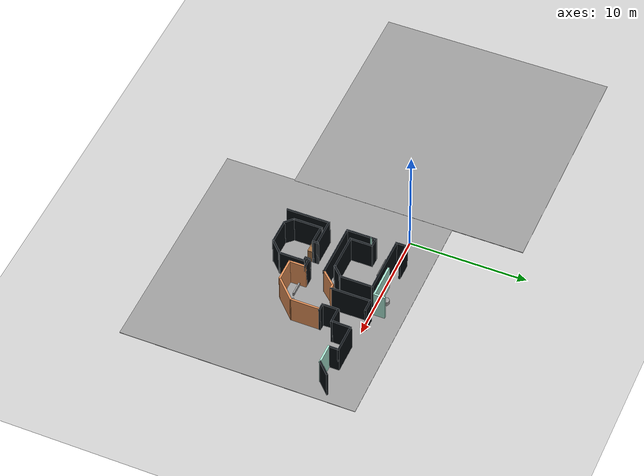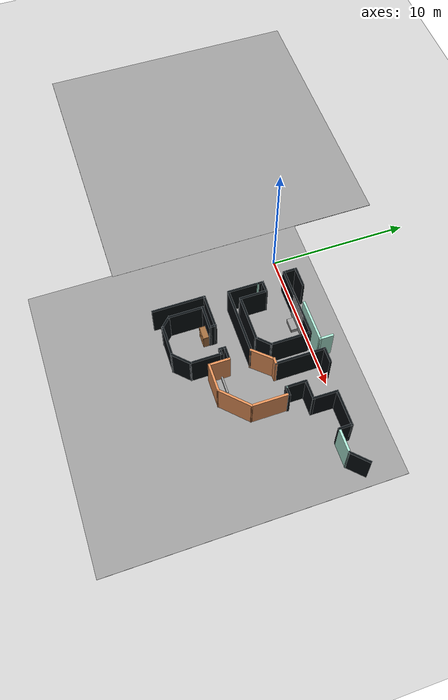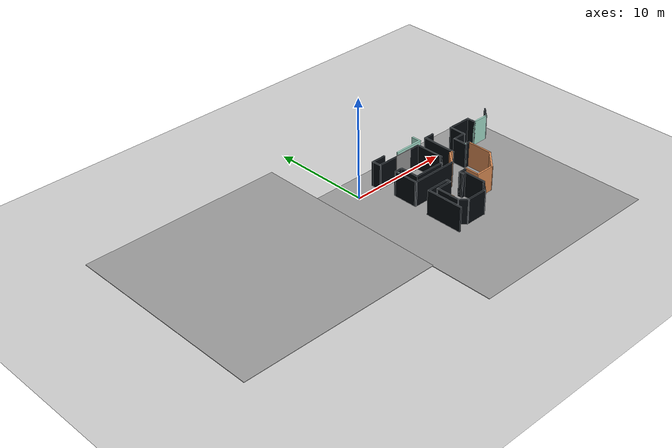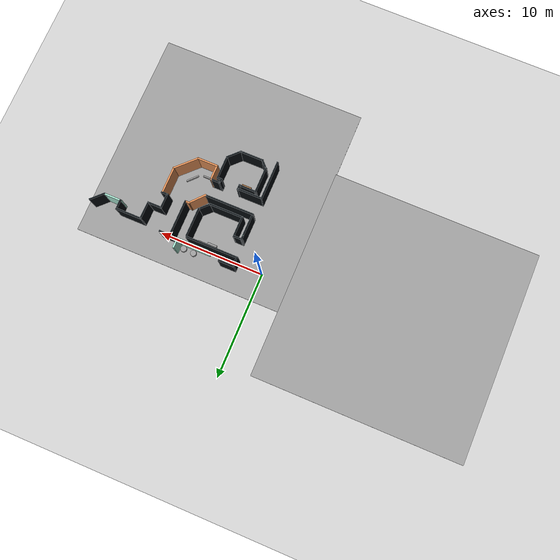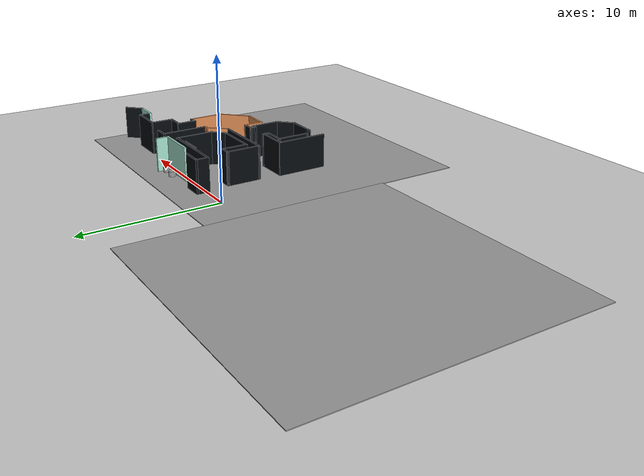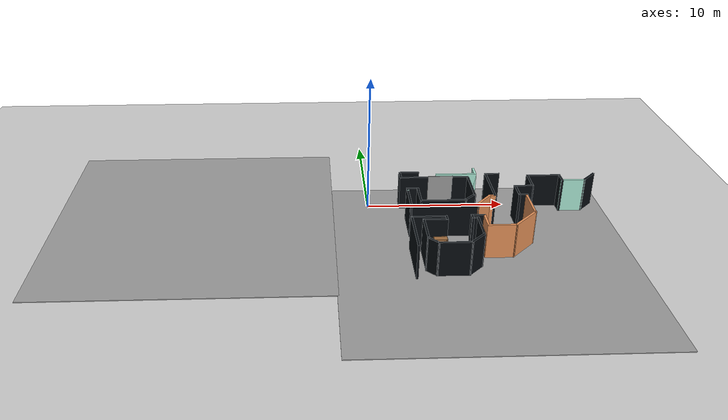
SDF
<sdf version="1.7">
 <world name="default">
  <model name="ground_plane">
   <static>1</static>
   <link name="link">
    <collision name="collision">
     <geometry><plane><normal>0 0 1</normal><size>100 100</size></plane></geometry>
     <surface><friction><ode><mu>100</mu><mu2>50</mu2></ode></friction></surface>
    </collision>
    <visual name="visual">
     <cast_shadows>0</cast_shadows>
     <geometry><plane><normal>0 0 1</normal><size>100 100</size></plane></geometry>
     <material>
      <script><uri>file://media/materials/scripts/gazebo.material</uri><name>Gazebo/Grey</name></script>
      <ambient>0.55 0.55 0.53 1</ambient>
      <diffuse>0.55 0.55 0.53 1</diffuse>
      <specular>0.08 0.08 0.08 1</specular>
      <emissive>0 0 0 1</emissive>
     </material>
    </visual>
   </link>
  </model>
  <model name="among_us_world">
   <pose>0.133216 -0.12311 0 0 -0 0</pose>
   <link name="Wall_130">
    <collision name="Wall_130_Collision">
     <geometry><box><size>3 0.15 2.5</size></box></geometry>
     <pose>0 0 1.25 0 -0 0</pose>
    </collision>
    <visual name="Wall_130_Visual">
     <pose>0 0 1.25 0 -0 0</pose>
     <geometry><box><size>3 0.15 2.5</size></box></geometry>
     <material>
      <script><uri>file://media/materials/scripts/gazebo.material</uri><name>Gazebo/Motorway</name></script>
      <ambient>0.66 0.90 0.82 1</ambient>
      <diffuse>0.66 0.90 0.82 1</diffuse>
      <specular>0.08 0.08 0.08 1</specular>
      <emissive>0 0 0 1</emissive>
     </material>
     <meta><layer>0</layer></meta>
    </visual>
    <pose>6.3307 0.332351 0 0 -0 0</pose>
   </link>
   <link name="Wall_131">
    <collision name="Wall_131_Collision">
     <geometry><box><size>1 0.15 2.5</size></box></geometry>
     <pose>0 0 1.25 0 -0 0</pose>
    </collision>
    <visual name="Wall_131_Visual">
     <pose>0 0 1.25 0 -0 0</pose>
     <geometry><box><size>1 0.15 2.5</size></box></geometry>
     <material>
      <script><uri>file://media/materials/scripts/gazebo.material</uri><name>Gazebo/Motorway</name></script>
      <ambient>0.66 0.90 0.82 1</ambient>
      <diffuse>0.66 0.90 0.82 1</diffuse>
      <specular>0.08 0.08 0.08 1</specular>
      <emissive>0 0 0 1</emissive>
     </material>
     <meta><layer>0</layer></meta>
    </visual>
    <pose>7.7557 0.757351 0 0 -0 1.5708</pose>
   </link>
   <link name="Wall_134">
    <collision name="Wall_134_Collision">
     <geometry><box><size>1.10593 0.15 2.5</size></box></geometry>
     <pose>0 0 1.25 0 -0 0</pose>
    </collision>
    <visual name="Wall_134_Visual">
     <pose>0 0 1.25 0 -0 0</pose>
     <geometry><box><size>1.10593 0.15 2.5</size></box></geometry>
     <material>
      <script><uri>file://media/materials/scripts/gazebo.material</uri><name>Gazebo/Motorway</name></script>
      <ambient>0.025 0.045 0.06 1</ambient>
      <diffuse>0.025 0.045 0.06 1</diffuse>
      <specular>0.08 0.08 0.08 1</specular>
      <emissive>0 0 0 1</emissive>
     </material>
     <meta><layer>0</layer></meta>
    </visual>
    <pose>8.98367 0.332351 0 0 -0 3.14159</pose>
   </link>
   <link name="Wall_135">
    <collision name="Wall_135_Collision">
     <geometry><box><size>3.5 0.15 2.5</size></box></geometry>
     <pose>0 0 1.25 0 -0 0</pose>
    </collision>
    <visual name="Wall_135_Visual">
     <pose>0 0 1.25 0 -0 0</pose>
     <geometry><box><size>3.5 0.15 2.5</size></box></geometry>
     <material>
      <script><uri>file://media/materials/scripts/gazebo.material</uri><name>Gazebo/Motorway</name></script>
      <ambient>0.025 0.045 0.06 1</ambient>
      <diffuse>0.025 0.045 0.06 1</diffuse>
      <specular>0.08 0.08 0.08 1</specular>
      <emissive>0 0 0 1</emissive>
     </material>
     <meta><layer>0</layer></meta>
    </visual>
    <pose>8.5057 -1.34265 0 0 -0 -1.5708</pose>
   </link>
   <link name="Wall_136">
    <collision name="Wall_136_Collision">
     <geometry><box><size>0.5 0.15 2.5</size></box></geometry>
     <pose>0 0 1.25 0 -0 0</pose>
    </collision>
    <visual name="Wall_136_Visual">
     <pose>0 0 1.25 0 -0 0</pose>
     <geometry><box><size>0.5 0.15 2.5</size></box></geometry>
     <material>
      <script><uri>file://media/materials/scripts/gazebo.material</uri><name>Gazebo/Motorway</name></script>
      <ambient>0.88 0.56 0.34 1</ambient>
      <diffuse>0.88 0.56 0.34 1</diffuse>
      <specular>0.08 0.08 0.08 1</specular>
      <emissive>0 0 0 1</emissive>
     </material>
     <meta><layer>0</layer></meta>
    </visual>
    <pose>8.3307 -3.01765 0 0 -0 3.14159</pose>
   </link>
   <link name="Wall_141">
    <collision name="Wall_141_Collision">
     <geometry><box><size>4.75 0.15 2.5</size></box></geometry>
     <pose>0 0 1.25 0 -0 0</pose>
    </collision>
    <visual name="Wall_141_Visual">
     <pose>0 0 1.25 0 -0 0</pose>
     <geometry><box><size>4.75 0.15 2.5</size></box></geometry>
     <material>
      <script><uri>file://media/materials/scripts/gazebo.material</uri><name>Gazebo/Motorway</name></script>
      <ambient>0.025 0.045 0.06 1</ambient>
      <diffuse>0.025 0.045 0.06 1</diffuse>
      <specular>0.08 0.08 0.08 1</specular>
      <emissive>0 0 0 1</emissive>
     </material>
     <meta><layer>0</layer></meta>
    </visual>
    <pose>4.78856 -4.21327 0 0 -0 0</pose>
   </link>
   <link name="Wall_143">
    <collision name="Wall_143_Collision">
     <geometry><box><size>1.75259 0.15 2.5</size></box></geometry>
     <pose>0 0 1.25 0 -0 0</pose>
    </collision>
    <visual name="Wall_143_Visual">
     <pose>0 0 1.25 0 -0 0</pose>
     <geometry><box><size>1.75259 0.15 2.5</size></box></geometry>
     <material>
      <script><uri>file://media/materials/scripts/gazebo.material</uri><name>Gazebo/Motorway</name></script>
      <ambient>0.88 0.56 0.34 1</ambient>
      <diffuse>0.88 0.56 0.34 1</diffuse>
      <specular>0.08 0.08 0.08 1</specular>
      <emissive>0 0 0 1</emissive>
     </material>
     <meta><layer>0</layer></meta>
    </visual>
    <pose>7.62213 -3.61546 0 0 -0 -2.29947</pose>
   </link>
   <link name="Wall_183">
    <collision name="Wall_183_Collision">
     <geometry><box><size>1.5 0.15 2.5</size></box></geometry>
     <pose>0 0 1.25 0 -0 0</pose>
    </collision>
    <visual name="Wall_183_Visual">
     <pose>0 0 1.25 0 -0 0</pose>
     <geometry><box><size>1.5 0.15 2.5</size></box></geometry>
     <material>
      <script><uri>file://media/materials/scripts/gazebo.material</uri><name>Gazebo/Motorway</name></script>
      <ambient>0.025 0.045 0.06 1</ambient>
      <diffuse>0.025 0.045 0.06 1</diffuse>
      <specular>0.08 0.08 0.08 1</specular>
      <emissive>0 0 0 1</emissive>
     </material>
     <meta><layer>0</layer></meta>
    </visual>
    <pose>2.89222 0.753062 0 0 -0 3.14159</pose>
   </link>
   <link name="Wall_184">
    <collision name="Wall_184_Collision">
     <geometry><box><size>1 0.15 2.5</size></box></geometry>
     <pose>0 0 1.25 0 -0 0</pose>
    </collision>
    <visual name="Wall_184_Visual">
     <pose>0 0 1.25 0 -0 0</pose>
     <geometry><box><size>1 0.15 2.5</size></box></geometry>
     <material>
      <script><uri>file://media/materials/scripts/gazebo.material</uri><name>Gazebo/Motorway</name></script>
      <ambient>0.025 0.045 0.06 1</ambient>
      <diffuse>0.025 0.045 0.06 1</diffuse>
      <specular>0.08 0.08 0.08 1</specular>
      <emissive>0 0 0 1</emissive>
     </material>
     <meta><layer>0</layer></meta>
    </visual>
    <pose>2.21722 0.328062 0 0 -0 -1.5708</pose>
   </link>
   <link name="Wall_185">
    <collision name="Wall_185_Collision">
     <geometry><box><size>5 0.15 2.5</size></box></geometry>
     <pose>0 0 1.25 0 -0 0</pose>
    </collision>
    <visual name="Wall_185_Visual">
     <pose>0 0 1.25 0 -0 0</pose>
     <geometry><box><size>5 0.15 2.5</size></box></geometry>
     <material>
      <script><uri>file://media/materials/scripts/gazebo.material</uri><name>Gazebo/Motorway</name></script>
      <ambient>0.025 0.045 0.06 1</ambient>
      <diffuse>0.025 0.045 0.06 1</diffuse>
      <specular>0.08 0.08 0.08 1</specular>
      <emissive>0 0 0 1</emissive>
     </material>
     <meta><layer>0</layer></meta>
    </visual>
    <pose>4.64222 -0.096938 0 0 -0 0</pose>
   </link>
   <link name="Wall_189">
    <collision name="Wall_189_Collision">
     <geometry><box><size>0.892418 0.15 2.5</size></box></geometry>
     <pose>0 0 1.25 0 -0 0</pose>
    </collision>
    <visual name="Wall_189_Visual">
     <pose>0 0 1.25 0 -0 0</pose>
     <geometry><box><size>0.892418 0.15 2.5</size></box></geometry>
     <material>
      <script><uri>file://media/materials/scripts/gazebo.material</uri><name>Gazebo/Motorway</name></script>
      <ambient>0.025 0.045 0.06 1</ambient>
      <diffuse>0.025 0.045 0.06 1</diffuse>
      <specular>0.08 0.08 0.08 1</specular>
      <emissive>0 0 0 1</emissive>
     </material>
     <meta><layer>0</layer></meta>
    </visual>
    <pose>2.86737 -1.75991 0 0 -0 -0.009059</pose>
   </link>
   <link name="Wall_190">
    <collision name="Wall_190_Collision">
     <geometry><box><size>2 0.15 2.5</size></box></geometry>
     <pose>0 0 1.25 0 -0 0</pose>
    </collision>
    <visual name="Wall_190_Visual">
     <pose>0 0 1.25 0 -0 0</pose>
     <geometry><box><size>2 0.15 2.5</size></box></geometry>
     <material>
      <script><uri>file://media/materials/scripts/gazebo.material</uri><name>Gazebo/Motorway</name></script>
      <ambient>0.025 0.045 0.06 1</ambient>
      <diffuse>0.025 0.045 0.06 1</diffuse>
      <specular>0.08 0.08 0.08 1</specular>
      <emissive>0 0 0 1</emissive>
     </material>
     <meta><layer>0</layer></meta>
    </visual>
    <pose>3.23856 -2.68827 0 0 -0 -1.5708</pose>
   </link>
   <link name="Wall_191">
    <collision name="Wall_191_Collision">
     <geometry><box><size>3.25 0.15 2.5</size></box></geometry>
     <pose>0 0 1.25 0 -0 0</pose>
    </collision>
    <visual name="Wall_191_Visual">
     <pose>0 0 1.25 0 -0 0</pose>
     <geometry><box><size>3.25 0.15 2.5</size></box></geometry>
     <material>
      <script><uri>file://media/materials/scripts/gazebo.material</uri><name>Gazebo/Motorway</name></script>
      <ambient>0.025 0.045 0.06 1</ambient>
      <diffuse>0.025 0.045 0.06 1</diffuse>
      <specular>0.08 0.08 0.08 1</specular>
      <emissive>0 0 0 1</emissive>
     </material>
     <meta><layer>0</layer></meta>
    </visual>
    <pose>4.78856 -3.61327 0 0 -0 0</pose>
   </link>
   <link name="Wall_192">
    <collision name="Wall_192_Collision">
     <geometry><box><size>1.25 0.15 2.5</size></box></geometry>
     <pose>0 0 1.25 0 -0 0</pose>
    </collision>
    <visual name="Wall_192_Visual">
     <pose>0 0 1.25 0 -0 0</pose>
     <geometry><box><size>1.25 0.15 2.5</size></box></geometry>
     <material>
      <script><uri>file://media/materials/scripts/gazebo.material</uri><name>Gazebo/Motorway</name></script>
      <ambient>0.025 0.045 0.06 1</ambient>
      <diffuse>0.025 0.045 0.06 1</diffuse>
      <specular>0.08 0.08 0.08 1</specular>
      <emissive>0 0 0 1</emissive>
     </material>
     <meta><layer>0</layer></meta>
    </visual>
    <pose>6.72747 -3.22436 0 0 -0 0.785398</pose>
   </link>
   <link name="Wall_193">
    <collision name="Wall_193_Collision">
     <geometry><box><size>2.75 0.15 2.5</size></box></geometry>
     <pose>0 0 1.25 0 -0 0</pose>
    </collision>
    <visual name="Wall_193_Visual">
     <pose>0 0 1.25 0 -0 0</pose>
     <geometry><box><size>2.75 0.15 2.5</size></box></geometry>
     <material>
      <script><uri>file://media/materials/scripts/gazebo.material</uri><name>Gazebo/Motorway</name></script>
      <ambient>0.025 0.045 0.06 1</ambient>
      <diffuse>0.025 0.045 0.06 1</diffuse>
      <specular>0.08 0.08 0.08 1</specular>
      <emissive>0 0 0 1</emissive>
     </material>
     <meta><layer>0</layer></meta>
    </visual>
    <pose>7.11638 -1.53545 0 0 -0 1.5708</pose>
   </link>
   <link name="Wall_200">
    <collision name="Wall_200_Collision">
     <geometry><box><size>3.75 0.15 2.5</size></box></geometry>
     <pose>0 0 1.25 0 -0 0</pose>
    </collision>
    <visual name="Wall_200_Visual">
     <pose>0 0 1.25 0 -0 0</pose>
     <geometry><box><size>3.75 0.15 2.5</size></box></geometry>
     <material>
      <script><uri>file://media/materials/scripts/gazebo.material</uri><name>Gazebo/Motorway</name></script>
      <ambient>0.025 0.045 0.06 1</ambient>
      <diffuse>0.025 0.045 0.06 1</diffuse>
      <specular>0.08 0.08 0.08 1</specular>
      <emissive>0 0 0 1</emissive>
     </material>
     <meta><layer>0</layer></meta>
    </visual>
    <pose>2.32919 -7.66138 0 0 -0 1.5708</pose>
   </link>
   <link name="Wall_211">
    <collision name="Wall_211_Collision">
     <geometry><box><size>0.15 0.15 2.5</size></box></geometry>
     <pose>0 0 1.25 0 -0 0</pose>
    </collision>
    <visual name="Wall_211_Visual">
     <pose>0 0 1.25 0 -0 0</pose>
     <geometry><box><size>0.15 0.15 2.5</size></box></geometry>
     <material>
      <script><uri>file://media/materials/scripts/gazebo.material</uri><name>Gazebo/Motorway</name></script>
      <ambient>0.66 0.90 0.82 1</ambient>
      <diffuse>0.66 0.90 0.82 1</diffuse>
      <specular>0.08 0.08 0.08 1</specular>
      <emissive>0 0 0 1</emissive>
     </material>
     <meta><layer>0</layer></meta>
    </visual>
    <pose>2.50201 -2.11327 0 0 -0 0</pose>
   </link>
   <link name="Wall_217">
    <collision name="Wall_217_Collision">
     <geometry><box><size>2.60674 0.15 2.5</size></box></geometry>
     <pose>0 0 1.25 0 -0 0</pose>
    </collision>
    <visual name="Wall_217_Visual">
     <pose>0 0 1.25 0 -0 0</pose>
     <geometry><box><size>2.60674 0.15 2.5</size></box></geometry>
     <material>
      <script><uri>file://media/materials/scripts/gazebo.material</uri><name>Gazebo/Motorway</name></script>
      <ambient>0.025 0.045 0.06 1</ambient>
      <diffuse>0.025 0.045 0.06 1</diffuse>
      <specular>0.08 0.08 0.08 1</specular>
      <emissive>0 0 0 1</emissive>
     </material>
     <meta><layer>0</layer></meta>
    </visual>
    <pose>2.49237 -2.9849 0 0 -0 -1.5739</pose>
   </link>
   <link name="Wall_22">
    <collision name="Wall_22_Collision">
     <geometry><box><size>1.5 0.15 2.5</size></box></geometry>
     <pose>0 0 1.25 0 -0 0</pose>
    </collision>
    <visual name="Wall_22_Visual">
     <pose>0 0 1.25 0 -0 0</pose>
     <geometry><box><size>1.5 0.15 2.5</size></box></geometry>
     <material>
      <script><uri>file://media/materials/scripts/gazebo.material</uri><name>Gazebo/Motorway</name></script>
      <ambient>0.025 0.045 0.06 1</ambient>
      <diffuse>0.025 0.045 0.06 1</diffuse>
      <specular>0.08 0.08 0.08 1</specular>
      <emissive>0 0 0 1</emissive>
     </material>
     <meta><layer>0</layer></meta>
    </visual>
    <pose>15.9665 -0.40005 0 0 -0 -2.35619</pose>
   </link>
   <link name="Wall_23">
    <collision name="Wall_23_Collision">
     <geometry><box><size>1.75 0.15 2.5</size></box></geometry>
     <pose>0 0 1.25 0 -0 0</pose>
    </collision>
    <visual name="Wall_23_Visual">
     <pose>0 0 1.25 0 -0 0</pose>
     <geometry><box><size>1.75 0.15 2.5</size></box></geometry>
     <material>
      <script><uri>file://media/materials/scripts/gazebo.material</uri><name>Gazebo/Motorway</name></script>
      <ambient>0.66 0.90 0.82 1</ambient>
      <diffuse>0.66 0.90 0.82 1</diffuse>
      <specular>0.08 0.08 0.08 1</specular>
      <emissive>0 0 0 1</emissive>
     </material>
     <meta><layer>0</layer></meta>
    </visual>
    <pose>14.6892 -0.877347 0 0 -0 3.14159</pose>
   </link>
   <link name="Wall_24">
    <collision name="Wall_24_Collision">
     <geometry><box><size>0.963748 0.15 2.5</size></box></geometry>
     <pose>0 0 1.25 0 -0 0</pose>
    </collision>
    <visual name="Wall_24_Visual">
     <pose>0 0 1.25 0 -0 0</pose>
     <geometry><box><size>0.963748 0.15 2.5</size></box></geometry>
     <material>
      <script><uri>file://media/materials/scripts/gazebo.material</uri><name>Gazebo/Motorway</name></script>
      <ambient>0.025 0.045 0.06 1</ambient>
      <diffuse>0.025 0.045 0.06 1</diffuse>
      <specular>0.08 0.08 0.08 1</specular>
      <emissive>0 0 0 1</emissive>
     </material>
     <meta><layer>0</layer></meta>
    </visual>
    <pose>13.8892 -0.470473 0 0 -0 1.5708</pose>
   </link>
   <link name="Wall_25">
    <collision name="Wall_25_Collision">
     <geometry><box><size>2.5 0.15 2.5</size></box></geometry>
     <pose>0 0 1.25 0 -0 0</pose>
    </collision>
    <visual name="Wall_25_Visual">
     <pose>0 0 1.25 0 -0 0</pose>
     <geometry><box><size>2.5 0.15 2.5</size></box></geometry>
     <material>
      <script><uri>file://media/materials/scripts/gazebo.material</uri><name>Gazebo/Motorway</name></script>
      <ambient>0.025 0.045 0.06 1</ambient>
      <diffuse>0.025 0.045 0.06 1</diffuse>
      <specular>0.08 0.08 0.08 1</specular>
      <emissive>0 0 0 1</emissive>
     </material>
     <meta><layer>0</layer></meta>
    </visual>
    <pose>12.7142 -0.045708 0 0 -0 3.14159</pose>
   </link>
   <link name="Wall_26">
    <collision name="Wall_26_Collision">
     <geometry><box><size>1.73416 0.15 2.5</size></box></geometry>
     <pose>0 0 1.25 0 -0 0</pose>
    </collision>
    <visual name="Wall_26_Visual">
     <pose>0 0 1.25 0 -0 0</pose>
     <geometry><box><size>1.73416 0.15 2.5</size></box></geometry>
     <material>
      <script><uri>file://media/materials/scripts/gazebo.material</uri><name>Gazebo/Motorway</name></script>
      <ambient>0.025 0.045 0.06 1</ambient>
      <diffuse>0.025 0.045 0.06 1</diffuse>
      <specular>0.08 0.08 0.08 1</specular>
      <emissive>0 0 0 1</emissive>
     </material>
     <meta><layer>0</layer></meta>
    </visual>
    <pose>11.5256 -0.855562 0 0 -0 -1.58788</pose>
   </link>
   <link name="Wall_27">
    <collision name="Wall_27_Collision">
     <geometry><box><size>1.40477 0.15 2.5</size></box></geometry>
     <pose>0 0 1.25 0 -0 0</pose>
    </collision>
    <visual name="Wall_27_Visual">
     <pose>0 0 1.25 0 -0 0</pose>
     <geometry><box><size>1.40477 0.15 2.5</size></box></geometry>
     <material>
      <script><uri>file://media/materials/scripts/gazebo.material</uri><name>Gazebo/Motorway</name></script>
      <ambient>0.025 0.045 0.06 1</ambient>
      <diffuse>0.025 0.045 0.06 1</diffuse>
      <specular>0.08 0.08 0.08 1</specular>
      <emissive>0 0 0 1</emissive>
     </material>
     <meta><layer>0</layer></meta>
    </visual>
    <pose>10.8914 -1.64752 0 0 -0 3.14159</pose>
   </link>
   <link name="Wall_66">
    <collision name="Wall_66_Collision">
     <geometry><box><size>2.44341 0.15 2.5</size></box></geometry>
     <pose>0 0 1.25 0 -0 0</pose>
    </collision>
    <visual name="Wall_66_Visual">
     <pose>0 0 1.25 0 -0 0</pose>
     <geometry><box><size>2.44341 0.15 2.5</size></box></geometry>
     <material>
      <script><uri>file://media/materials/scripts/gazebo.material</uri><name>Gazebo/Motorway</name></script>
      <ambient>0.025 0.045 0.06 1</ambient>
      <diffuse>0.025 0.045 0.06 1</diffuse>
      <specular>0.08 0.08 0.08 1</specular>
      <emissive>0 0 0 1</emissive>
     </material>
     <meta><layer>0</layer></meta>
    </visual>
    <pose>3.49624 -5.86016 0 0 -0 0.001069</pose>
   </link>
   <link name="Wall_68">
    <collision name="Wall_68_Collision">
     <geometry><box><size>0.526231 0.15 2.5</size></box></geometry>
     <pose>0 0 1.25 0 -0 0</pose>
    </collision>
    <visual name="Wall_68_Visual">
     <pose>0 0 1.25 0 -0 0</pose>
     <geometry><box><size>0.526231 0.15 2.5</size></box></geometry>
     <material>
      <script><uri>file://media/materials/scripts/gazebo.material</uri><name>Gazebo/Motorway</name></script>
      <ambient>0.025 0.045 0.06 1</ambient>
      <diffuse>0.025 0.045 0.06 1</diffuse>
      <specular>0.08 0.08 0.08 1</specular>
      <emissive>0 0 0 1</emissive>
     </material>
     <meta><layer>0</layer></meta>
    </visual>
    <pose>4.64294 -6.02916 0 0 -0 -1.5708</pose>
   </link>
   <link name="Wall_69">
    <collision name="Wall_69_Collision">
     <geometry><box><size>1.71385 0.15 2.5</size></box></geometry>
     <pose>0 0 1.25 0 -0 0</pose>
    </collision>
    <visual name="Wall_69_Visual">
     <pose>0 0 1.25 0 -0 0</pose>
     <geometry><box><size>1.71385 0.15 2.5</size></box></geometry>
     <material>
      <script><uri>file://media/materials/scripts/gazebo.material</uri><name>Gazebo/Motorway</name></script>
      <ambient>0.025 0.045 0.06 1</ambient>
      <diffuse>0.025 0.045 0.06 1</diffuse>
      <specular>0.08 0.08 0.08 1</specular>
      <emissive>0 0 0 1</emissive>
     </material>
     <meta><layer>0</layer></meta>
    </visual>
    <pose>3.86107 -6.22622 0 0 -0 3.13015</pose>
   </link>
   <link name="Wall_70">
    <collision name="Wall_70_Collision">
     <geometry><box><size>2.5 0.15 2.5</size></box></geometry>
     <pose>0 0 1.25 0 -0 0</pose>
    </collision>
    <visual name="Wall_70_Visual">
     <pose>0 0 1.25 0 -0 0</pose>
     <geometry><box><size>2.5 0.15 2.5</size></box></geometry>
     <material>
      <script><uri>file://media/materials/scripts/gazebo.material</uri><name>Gazebo/Motorway</name></script>
      <ambient>0.025 0.045 0.06 1</ambient>
      <diffuse>0.025 0.045 0.06 1</diffuse>
      <specular>0.08 0.08 0.08 1</specular>
      <emissive>0 0 0 1</emissive>
     </material>
     <meta><layer>0</layer></meta>
    </visual>
    <pose>3.07919 -7.39227 0 0 -0 -1.5708</pose>
   </link>
   <link name="Wall_71">
    <collision name="Wall_71_Collision">
     <geometry><box><size>1 0.15 2.5</size></box></geometry>
     <pose>0 0 1.25 0 -0 0</pose>
    </collision>
    <visual name="Wall_71_Visual">
     <pose>0 0 1.25 0 -0 0</pose>
     <geometry><box><size>1 0.15 2.5</size></box></geometry>
     <material>
      <script><uri>file://media/materials/scripts/gazebo.material</uri><name>Gazebo/Motorway</name></script>
      <ambient>0.025 0.045 0.06 1</ambient>
      <diffuse>0.025 0.045 0.06 1</diffuse>
      <specular>0.08 0.08 0.08 1</specular>
      <emissive>0 0 0 1</emissive>
     </material>
     <meta><layer>0</layer></meta>
    </visual>
    <pose>3.37971 -8.86779 0 0 -0 -0.785398</pose>
   </link>
   <link name="Wall_72">
    <collision name="Wall_72_Collision">
     <geometry><box><size>2.25 0.15 2.5</size></box></geometry>
     <pose>0 0 1.25 0 -0 0</pose>
    </collision>
    <visual name="Wall_72_Visual">
     <pose>0 0 1.25 0 -0 0</pose>
     <geometry><box><size>2.25 0.15 2.5</size></box></geometry>
     <material>
      <script><uri>file://media/materials/scripts/gazebo.material</uri><name>Gazebo/Motorway</name></script>
      <ambient>0.025 0.045 0.06 1</ambient>
      <diffuse>0.025 0.045 0.06 1</diffuse>
      <specular>0.08 0.08 0.08 1</specular>
      <emissive>0 0 0 1</emissive>
     </material>
     <meta><layer>0</layer></meta>
    </visual>
    <pose>4.73024 -9.16831 0 0 -0 0</pose>
   </link>
   <link name="Wall_73">
    <collision name="Wall_73_Collision">
     <geometry><box><size>1.5 0.15 2.5</size></box></geometry>
     <pose>0 0 1.25 0 -0 0</pose>
    </collision>
    <visual name="Wall_73_Visual">
     <pose>0 0 1.25 0 -0 0</pose>
     <geometry><box><size>1.5 0.15 2.5</size></box></geometry>
     <material>
      <script><uri>file://media/materials/scripts/gazebo.material</uri><name>Gazebo/Motorway</name></script>
      <ambient>0.025 0.045 0.06 1</ambient>
      <diffuse>0.025 0.045 0.06 1</diffuse>
      <specular>0.08 0.08 0.08 1</specular>
      <emissive>0 0 0 1</emissive>
     </material>
     <meta><layer>0</layer></meta>
    </visual>
    <pose>6.25753 -8.69102 0 0 -0 0.785398</pose>
   </link>
   <link name="Wall_76">
    <collision name="Wall_76_Collision">
     <geometry><box><size>2.25 0.15 2.5</size></box></geometry>
     <pose>0 0 1.25 0 -0 0</pose>
    </collision>
    <visual name="Wall_76_Visual">
     <pose>0 0 1.25 0 -0 0</pose>
     <geometry><box><size>2.25 0.15 2.5</size></box></geometry>
     <material>
      <script><uri>file://media/materials/scripts/gazebo.material</uri><name>Gazebo/Motorway</name></script>
      <ambient>0.025 0.045 0.06 1</ambient>
      <diffuse>0.025 0.045 0.06 1</diffuse>
      <specular>0.08 0.08 0.08 1</specular>
      <emissive>0 0 0 1</emissive>
     </material>
     <meta><layer>0</layer></meta>
    </visual>
    <pose>6.73483 -7.16372 0 0 -0 1.5708</pose>
   </link>
   <link name="Wall_77">
    <collision name="Wall_77_Collision">
     <geometry><box><size>0.5 0.15 2.5</size></box></geometry>
     <pose>0 0 1.25 0 -0 0</pose>
    </collision>
    <visual name="Wall_77_Visual">
     <pose>0 0 1.25 0 -0 0</pose>
     <geometry><box><size>0.5 0.15 2.5</size></box></geometry>
     <material>
      <script><uri>file://media/materials/scripts/gazebo.material</uri><name>Gazebo/Motorway</name></script>
      <ambient>0.025 0.045 0.06 1</ambient>
      <diffuse>0.025 0.045 0.06 1</diffuse>
      <specular>0.08 0.08 0.08 1</specular>
      <emissive>0 0 0 1</emissive>
     </material>
     <meta><layer>0</layer></meta>
    </visual>
    <pose>6.55983 -6.11372 0 0 -0 3.14159</pose>
   </link>
   <link name="Wall_78">
    <collision name="Wall_78_Collision">
     <geometry><box><size>0.5 0.15 2.5</size></box></geometry>
     <pose>0 0 1.25 0 -0 0</pose>
    </collision>
    <visual name="Wall_78_Visual">
     <pose>0 0 1.25 0 -0 0</pose>
     <geometry><box><size>0.5 0.15 2.5</size></box></geometry>
     <material>
      <script><uri>file://media/materials/scripts/gazebo.material</uri><name>Gazebo/Motorway</name></script>
      <ambient>0.025 0.045 0.06 1</ambient>
      <diffuse>0.025 0.045 0.06 1</diffuse>
      <specular>0.08 0.08 0.08 1</specular>
      <emissive>0 0 0 1</emissive>
     </material>
     <meta><layer>0</layer></meta>
    </visual>
    <pose>6.38483 -5.93872 0 0 -0 1.5708</pose>
   </link>
   <link name="Wall_79">
    <collision name="Wall_79_Collision">
     <geometry><box><size>1 0.15 2.5</size></box></geometry>
     <pose>0 0 1.25 0 -0 0</pose>
    </collision>
    <visual name="Wall_79_Visual">
     <pose>0 0 1.25 0 -0 0</pose>
     <geometry><box><size>1 0.15 2.5</size></box></geometry>
     <material>
      <script><uri>file://media/materials/scripts/gazebo.material</uri><name>Gazebo/Motorway</name></script>
      <ambient>0.025 0.045 0.06 1</ambient>
      <diffuse>0.025 0.045 0.06 1</diffuse>
      <specular>0.08 0.08 0.08 1</specular>
      <emissive>0 0 0 1</emissive>
     </material>
     <meta><layer>0</layer></meta>
    </visual>
    <pose>6.80983 -5.76372 0 0 -0 0</pose>
   </link>
   <link name="Wall_80">
    <collision name="Wall_80_Collision">
     <geometry><box><size>1.5 0.15 2.5</size></box></geometry>
     <pose>0 0 1.25 0 -0 0</pose>
    </collision>
    <visual name="Wall_80_Visual">
     <pose>0 0 1.25 0 -0 0</pose>
     <geometry><box><size>1.5 0.15 2.5</size></box></geometry>
     <material>
      <script><uri>file://media/materials/scripts/gazebo.material</uri><name>Gazebo/Motorway</name></script>
      <ambient>0.88 0.56 0.34 1</ambient>
      <diffuse>0.88 0.56 0.34 1</diffuse>
      <specular>0.08 0.08 0.08 1</specular>
      <emissive>0 0 0 1</emissive>
     </material>
     <meta><layer>0</layer></meta>
    </visual>
    <pose>7.23483 -6.43872 0 0 -0 -1.5708</pose>
   </link>
   <link name="Wall_82">
    <collision name="Wall_82_Collision">
     <geometry><box><size>2 0.15 2.5</size></box></geometry>
     <pose>0 0 1.25 0 -0 0</pose>
    </collision>
    <visual name="Wall_82_Visual">
     <pose>0 0 1.25 0 -0 0</pose>
     <geometry><box><size>2 0.15 2.5</size></box></geometry>
     <material>
      <script><uri>file://media/materials/scripts/gazebo.material</uri><name>Gazebo/Motorway</name></script>
      <ambient>0.88 0.56 0.34 1</ambient>
      <diffuse>0.88 0.56 0.34 1</diffuse>
      <specular>0.08 0.08 0.08 1</specular>
      <emissive>0 0 0 1</emissive>
     </material>
     <meta><layer>0</layer></meta>
    </visual>
    <pose>8.15983 -7.11372 0 0 -0 0</pose>
   </link>
   <link name="Wall_83">
    <collision name="Wall_83_Collision">
     <geometry><box><size>2.5 0.15 2.5</size></box></geometry>
     <pose>0 0 1.25 0 -0 0</pose>
    </collision>
    <visual name="Wall_83_Visual">
     <pose>0 0 1.25 0 -0 0</pose>
     <geometry><box><size>2.5 0.15 2.5</size></box></geometry>
     <material>
      <script><uri>file://media/materials/scripts/gazebo.material</uri><name>Gazebo/Motorway</name></script>
      <ambient>0.88 0.56 0.34 1</ambient>
      <diffuse>0.88 0.56 0.34 1</diffuse>
      <specular>0.08 0.08 0.08 1</specular>
      <emissive>0 0 0 1</emissive>
     </material>
     <meta><layer>0</layer></meta>
    </visual>
    <pose>9.91568 -6.28287 0 0 -0 0.785398</pose>
   </link>
   <link name="Wall_85">
    <collision name="Wall_85_Collision">
     <geometry><box><size>2.5 0.15 2.5</size></box></geometry>
     <pose>0 0 1.25 0 -0 0</pose>
    </collision>
    <visual name="Wall_85_Visual">
     <pose>0 0 1.25 0 -0 0</pose>
     <geometry><box><size>2.5 0.15 2.5</size></box></geometry>
     <material>
      <script><uri>file://media/materials/scripts/gazebo.material</uri><name>Gazebo/Motorway</name></script>
      <ambient>0.88 0.56 0.34 1</ambient>
      <diffuse>0.88 0.56 0.34 1</diffuse>
      <specular>0.08 0.08 0.08 1</specular>
      <emissive>0 0 0 1</emissive>
     </material>
     <meta><layer>0</layer></meta>
    </visual>
    <pose>10.7465 -4.27702 0 0 -0 1.5708</pose>
   </link>
   <link name="Wall_89">
    <collision name="Wall_89_Collision">
     <geometry><box><size>1.47984 0.15 2.5</size></box></geometry>
     <pose>0 0 1.25 0 -0 0</pose>
    </collision>
    <visual name="Wall_89_Visual">
     <pose>0 0 1.25 0 -0 0</pose>
     <geometry><box><size>1.47984 0.15 2.5</size></box></geometry>
     <material>
      <script><uri>file://media/materials/scripts/gazebo.material</uri><name>Gazebo/Motorway</name></script>
      <ambient>0.025 0.045 0.06 1</ambient>
      <diffuse>0.025 0.045 0.06 1</diffuse>
      <specular>0.08 0.08 0.08 1</specular>
      <emissive>0 0 0 1</emissive>
     </material>
     <meta><layer>0</layer></meta>
    </visual>
    <pose>10.2573 -2.31244 0 0 -0 -1.5708</pose>
   </link>
   <link name="Wall_90">
    <collision name="Wall_90_Collision">
     <geometry><box><size>0.15 0.15 2.5</size></box></geometry>
     <pose>0 0 1.25 0 -0 0</pose>
    </collision>
    <visual name="Wall_90_Visual">
     <pose>0 0 1.25 0 -0 0</pose>
     <geometry><box><size>0.15 0.15 2.5</size></box></geometry>
     <material>
      <script><uri>file://media/materials/scripts/gazebo.material</uri><name>Gazebo/Motorway</name></script>
      <ambient>0.66 0.90 0.82 1</ambient>
      <diffuse>0.66 0.90 0.82 1</diffuse>
      <specular>0.08 0.08 0.08 1</specular>
      <emissive>0 0 0 1</emissive>
     </material>
     <meta><layer>0</layer></meta>
    </visual>
    <pose>10.2844 -2.97735 0 0 -0 0</pose>
   </link>
   <link name="Wall_93">
    <collision name="Wall_93_Collision">
     <geometry><box><size>0.654769 0.15 2.5</size></box></geometry>
     <pose>0 0 1.25 0 -0 0</pose>
    </collision>
    <visual name="Wall_93_Visual">
     <pose>0 0 1.25 0 -0 0</pose>
     <geometry><box><size>0.654769 0.15 2.5</size></box></geometry>
     <material>
      <script><uri>file://media/materials/scripts/gazebo.material</uri><name>Gazebo/Motorway</name></script>
      <ambient>0.025 0.045 0.06 1</ambient>
      <diffuse>0.025 0.045 0.06 1</diffuse>
      <specular>0.08 0.08 0.08 1</specular>
      <emissive>0 0 0 1</emissive>
     </material>
     <meta><layer>0</layer></meta>
    </visual>
    <pose>10.5368 -2.97735 0 0 -0 0</pose>
   </link>
   <static>1</static>
  </model>
  <model name="first_2015_trash_can">
   <link name="link">
    <inertial>
     <pose>0 0 0.3683 0 -0 0</pose>
     <mass>4.83076</mass>
     <inertia>
      <ixx>0.281534</ixx>
      <ixy>0</ixy>
      <ixz>0</ixz>
      <iyy>0.281534</iyy>
      <iyz>0</iyz>
      <izz>0.126223</izz>
     </inertia>
    </inertial>
    <visual name="visual">
     <geometry><cylinder><radius>0.28</radius><length>0.75</length></cylinder></geometry>
     <material>
      <script><uri>file://media/materials/scripts/gazebo.material</uri><name>Gazebo/Grey</name></script>
      <ambient>0.42 0.43 0.42 1</ambient>
      <diffuse>0.42 0.43 0.42 1</diffuse>
      <specular>0.08 0.08 0.08 1</specular>
      <emissive>0 0 0 1</emissive>
     </material>
    </visual>
    <collision name="collision">
     <geometry><cylinder><radius>0.28</radius><length>0.75</length></cylinder></geometry>
    </collision>
   </link>
   <pose>7.4722 0.580031 0.018787 -0.039876 0.005734 -0.012308</pose>
  </model>
  <model name="first_2015_trash_can_clone">
   <link name="link">
    <inertial>
     <pose>0 0 0.3683 0 -0 0</pose>
     <mass>4.83076</mass>
     <inertia>
      <ixx>0.281534</ixx>
      <ixy>0</ixy>
      <ixz>0</ixz>
      <iyy>0.281534</iyy>
      <iyz>0</iyz>
      <izz>0.126223</izz>
     </inertia>
    </inertial>
    <visual name="visual">
     <geometry><cylinder><radius>0.28</radius><length>0.75</length></cylinder></geometry>
     <material>
      <script><uri>file://media/materials/scripts/gazebo.material</uri><name>Gazebo/Grey</name></script>
      <ambient>0.42 0.43 0.42 1</ambient>
      <diffuse>0.42 0.43 0.42 1</diffuse>
      <specular>0.08 0.08 0.08 1</specular>
      <emissive>0 0 0 1</emissive>
     </material>
    </visual>
    <collision name="collision">
     <geometry><cylinder><radius>0.28</radius><length>0.75</length></cylinder></geometry>
    </collision>
   </link>
   <pose>6.49012 0.624876 0.009998 -4e-06 1.1e-05 -0.025315</pose>
  </model>
  <model name="control_console">
   <static>1</static>
   <link name="link">
    <visual name="visual">
     <geometry><box><size>0.9 0.45 0.7</size></box></geometry>
     <material>
      <script><uri>file://media/materials/scripts/gazebo.material</uri><name>Gazebo/Grey</name></script>
      <ambient>0.42 0.43 0.42 1</ambient>
      <diffuse>0.42 0.43 0.42 1</diffuse>
      <specular>0.08 0.08 0.08 1</specular>
      <emissive>0 0 0 1</emissive>
     </material>
    </visual>
    <visual name="backvisual">
     <pose>0 0.29388 1.30113 0 -0 0</pose>
     <geometry><box><size>1.78 0.05 2.60225</size></box></geometry>
     <material>
      <script><uri>file://media/materials/scripts/gazebo.material</uri><name>Gazebo/Grey</name></script>
      <ambient>0.42 0.43 0.42 1</ambient>
      <diffuse>0.42 0.43 0.42 1</diffuse>
      <specular>0.08 0.08 0.08 1</specular>
      <emissive>0 0 0 1</emissive>
     </material>
    </visual>
    <collision name="back_collision">
     <pose>0 0.29388 1.30113 0 -0 0</pose>
     <geometry><box><size>1.78 0.05 2.60225</size></box></geometry>
    </collision>
    <collision name="base_collision">
     <pose>0 -0.14669 0.4128 0 -0 0</pose>
     <geometry><box><size>1.78872 0.97373 0.8256</size></box></geometry>
    </collision>
    <collision name="mid_collision">
     <pose>0 0.04268 1.48248 0 -0 0</pose>
     <geometry><box><size>1.70162 0.51806 1.5</size></box></geometry>
    </collision>
    <collision name="top_collision">
     <pose>0 -0.15709 2.31203 0 -0 0</pose>
     <geometry><box><size>1.78872 0.95292 0.62632</size></box></geometry>
    </collision>
    <collision name="panel_collision">
     <pose>0 -0.36311 0.90329 0.428775 -0 0</pose>
     <geometry><box><size>1.33522 0.550273 0.1</size></box></geometry>
    </collision>
    <collision name="left_lower_shoulder_collision">
     <pose>-0.7435 -0.19848 0.87 0.520485 -0 0</pose>
     <geometry><box><size>0.30172 0.7 0.5</size></box></geometry>
    </collision>
    <collision name="right_lower_shoulder_collision">
     <pose>0.7435 -0.19848 0.87 0.520485 -0 0</pose>
     <geometry><box><size>0.30172 0.7 0.5</size></box></geometry>
    </collision>
    <collision name="left_upper_shoulder_collision">
     <pose>-0.7435 -0.19152 1.99244 -0.620645 0 0</pose>
     <geometry><box><size>0.30172 0.7 0.5</size></box></geometry>
    </collision>
    <collision name="right_upper_shoulder_collision">
     <pose>0.7435 -0.19152 1.99244 -0.620645 0 0</pose>
     <geometry><box><size>0.30172 0.7 0.5</size></box></geometry>
    </collision>
   </link>
   <pose>5.22706 -0.603037 0 0 -0 0</pose>
  </model>
  <model name="bookshelf">
   <static>1</static>
   <link name="link">
    <inertial><mass>1</mass></inertial>
    <collision name="back">
     <pose>0 0.005 0.6 0 -0 0</pose>
     <geometry><box><size>0.9 0.01 1.2</size></box></geometry>
    </collision>
    <visual name="visual1">
     <pose>0 0.005 0.6 0 -0 0</pose>
     <geometry><box><size>0.9 0.01 1.2</size></box></geometry>
     <material>
      <script><uri>file://media/materials/scripts/gazebo.material</uri><name>Gazebo/Grey</name></script>
      <ambient>0.62 0.42 0.24 1</ambient>
      <diffuse>0.62 0.42 0.24 1</diffuse>
      <specular>0.08 0.08 0.08 1</specular>
      <emissive>0 0 0 1</emissive>
     </material>
    </visual>
    <collision name="left_side">
     <pose>0.45 -0.195 0.6 0 -0 0</pose>
     <geometry><box><size>0.02 0.4 1.2</size></box></geometry>
    </collision>
    <visual name="visual2">
     <pose>0.45 -0.195 0.6 0 -0 0</pose>
     <geometry><box><size>0.02 0.4 1.2</size></box></geometry>
     <material>
      <script><uri>file://media/materials/scripts/gazebo.material</uri><name>Gazebo/Grey</name></script>
      <ambient>0.62 0.42 0.24 1</ambient>
      <diffuse>0.62 0.42 0.24 1</diffuse>
      <specular>0.08 0.08 0.08 1</specular>
      <emissive>0 0 0 1</emissive>
     </material>
    </visual>
    <collision name="right_side">
     <pose>-0.45 -0.195 0.6 0 -0 0</pose>
     <geometry><box><size>0.02 0.4 1.2</size></box></geometry>
    </collision>
    <visual name="visual3">
     <pose>-0.45 -0.195 0.6 0 -0 0</pose>
     <geometry><box><size>0.02 0.4 1.2</size></box></geometry>
     <material>
      <script><uri>file://media/materials/scripts/gazebo.material</uri><name>Gazebo/Grey</name></script>
      <ambient>0.62 0.42 0.24 1</ambient>
      <diffuse>0.62 0.42 0.24 1</diffuse>
      <specular>0.08 0.08 0.08 1</specular>
      <emissive>0 0 0 1</emissive>
     </material>
    </visual>
    <collision name="bottom">
     <pose>0 -0.195 0.03 0 -0 0</pose>
     <geometry><box><size>0.88 0.4 0.06</size></box></geometry>
    </collision>
    <visual name="visual4">
     <pose>0 -0.195 0.03 0 -0 0</pose>
     <geometry><box><size>0.88 0.4 0.06</size></box></geometry>
     <material>
      <script><uri>file://media/materials/scripts/gazebo.material</uri><name>Gazebo/Grey</name></script>
      <ambient>0.62 0.42 0.24 1</ambient>
      <diffuse>0.62 0.42 0.24 1</diffuse>
      <specular>0.08 0.08 0.08 1</specular>
      <emissive>0 0 0 1</emissive>
     </material>
    </visual>
    <collision name="top">
     <pose>0 -0.195 1.19 0 -0 0</pose>
     <geometry><box><size>0.88 0.4 0.02</size></box></geometry>
    </collision>
    <visual name="visual5">
     <pose>0 -0.195 1.19 0 -0 0</pose>
     <geometry><box><size>0.88 0.4 0.02</size></box></geometry>
     <material>
      <script><uri>file://media/materials/scripts/gazebo.material</uri><name>Gazebo/Grey</name></script>
      <ambient>0.62 0.42 0.24 1</ambient>
      <diffuse>0.62 0.42 0.24 1</diffuse>
      <specular>0.08 0.08 0.08 1</specular>
      <emissive>0 0 0 1</emissive>
     </material>
    </visual>
    <collision name="low_shelf">
     <pose>0 -0.195 0.43 0 -0 0</pose>
     <geometry><box><size>0.88 0.4 0.02</size></box></geometry>
    </collision>
    <visual name="visual6">
     <pose>0 -0.195 0.43 0 -0 0</pose>
     <geometry><box><size>0.88 0.4 0.02</size></box></geometry>
     <material>
      <script><uri>file://media/materials/scripts/gazebo.material</uri><name>Gazebo/Grey</name></script>
      <ambient>0.62 0.42 0.24 1</ambient>
      <diffuse>0.62 0.42 0.24 1</diffuse>
      <specular>0.08 0.08 0.08 1</specular>
      <emissive>0 0 0 1</emissive>
     </material>
    </visual>
    <collision name="high_shelf">
     <pose>0 -0.195 0.8 0 -0 0</pose>
     <geometry><box><size>0.88 0.4 0.02</size></box></geometry>
    </collision>
    <visual name="visual7">
     <pose>0 -0.195 0.8 0 -0 0</pose>
     <geometry><box><size>0.88 0.4 0.02</size></box></geometry>
     <material>
      <script><uri>file://media/materials/scripts/gazebo.material</uri><name>Gazebo/Grey</name></script>
      <ambient>0.62 0.42 0.24 1</ambient>
      <diffuse>0.62 0.42 0.24 1</diffuse>
      <specular>0.08 0.08 0.08 1</specular>
      <emissive>0 0 0 1</emissive>
     </material>
    </visual>
   </link>
   <pose>4.37057 -6.44632 0 0 -0 0</pose>
  </model>
  <model name="nist_maze_wall_120">
   <static>1</static>
   <link name="nist_maze_wall_120_link">
    <collision name="collision"><geometry><box><size>1.2 0.12 0.6</size></box></geometry></collision>
    <visual name="visual">
     <geometry><box><size>1.2 0.12 0.6</size></box></geometry>
     <material>
      <script><uri>file://media/materials/scripts/gazebo.material</uri><name>Gazebo/Grey</name></script>
      <ambient>0.025 0.045 0.06 1</ambient>
      <diffuse>0.025 0.045 0.06 1</diffuse>
      <specular>0.08 0.08 0.08 1</specular>
      <emissive>0 0 0 1</emissive>
     </material>
    </visual>
   </link>
   <pose>8.02397 -6.40872 0 0 -0 0</pose>
  </model>
  <model name="asphalt_plane">
   <static>1</static>
   <link name="link">
    <collision name="collision"><geometry><box><size>20 20 0.1</size></box></geometry></collision>
    <visual name="visual">
     <cast_shadows>0</cast_shadows>
     <geometry><box><size>20 20 0.1</size></box></geometry>
     <material>
      <script><uri>file://media/materials/scripts/gazebo.material</uri><name>Gazebo/Grey</name></script>
      <ambient>0.23 0.23 0.22 1</ambient>
      <diffuse>0.23 0.23 0.22 1</diffuse>
      <specular>0.08 0.08 0.08 1</specular>
      <emissive>0 0 0 1</emissive>
     </material>
    </visual>
   </link>
   <pose>-12.6134 -1.31009 -0.045514 0 -0 0</pose>
  </model>
  <model name="asphalt_plane_clone">
   <static>1</static>
   <link name="link">
    <collision name="collision"><geometry><box><size>20 20 0.1</size></box></geometry></collision>
    <visual name="visual">
     <cast_shadows>0</cast_shadows>
     <geometry><box><size>20 20 0.1</size></box></geometry>
     <material>
      <script><uri>file://media/materials/scripts/gazebo.material</uri><name>Gazebo/Grey</name></script>
      <ambient>0.23 0.23 0.22 1</ambient>
      <diffuse>0.23 0.23 0.22 1</diffuse>
      <specular>0.08 0.08 0.08 1</specular>
      <emissive>0 0 0 1</emissive>
     </material>
    </visual>
   </link>
   <pose>7.28847 -7.40258 -0.049085 0 -0 0</pose>
  </model>
  <model name="nist_maze_wall_120_clone">
   <static>1</static>
   <link name="nist_maze_wall_120_link">
    <collision name="collision"><geometry><box><size>1.2 0.12 0.6</size></box></geometry></collision>
    <visual name="visual">
     <geometry><box><size>1.2 0.12 0.6</size></box></geometry>
     <material>
      <script><uri>file://media/materials/scripts/gazebo.material</uri><name>Gazebo/Grey</name></script>
      <ambient>0.025 0.045 0.06 1</ambient>
      <diffuse>0.025 0.045 0.06 1</diffuse>
      <specular>0.08 0.08 0.08 1</specular>
      <emissive>0 0 0 1</emissive>
     </material>
    </visual>
   </link>
   <pose>9.46778 -5.80885 0 0 -0 0.81475</pose>
  </model>
 </world>
</sdf>
